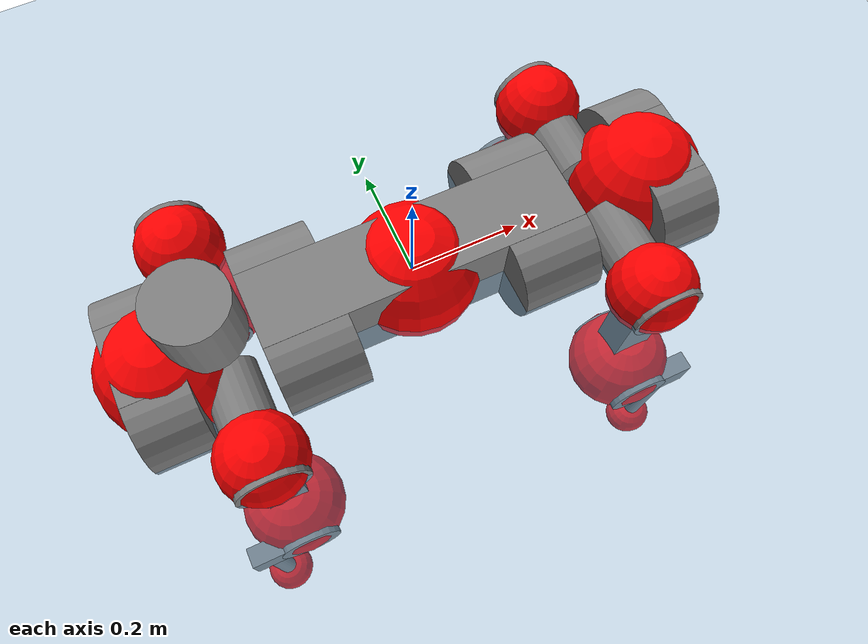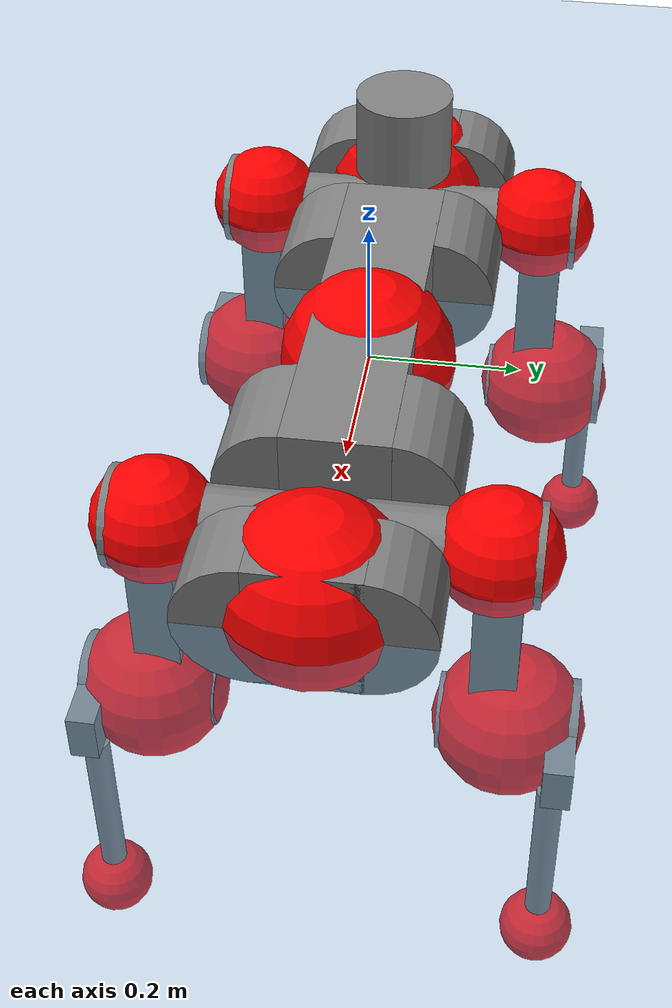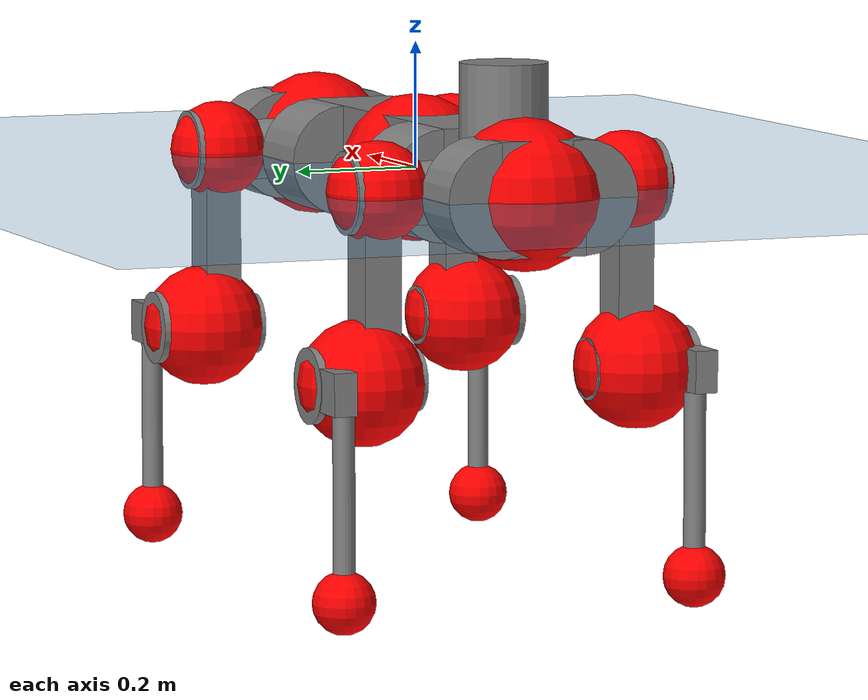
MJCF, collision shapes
<mujoco model="anymal_c">
  <compiler angle="radian" assetdir="assets" balanceinertia="true" inertiafromgeom="false"/>

  <option timestep="0.005" density="1.2" viscosity="2e-05"/>

  <size nkey="1"/>

  <visual>
    <quality shadowsize="8192"/>
    <map shadowclip="0.5"/>
  </visual>

  <default>
    <default class="/">
      <material specular="0" shininess="0.25"/>
      <geom contype="0" conaffinity="0" group="1" solref="-1000 -80"/>
      <site size="0.01 0.005 0.005" group="5"/>
      <general forcelimited="true" forcerange="-80 80" biastype="affine" gainprm="80" biasprm="0 -80 -2"/>
      <default class="anymal_c">
        <joint armature="0.01" damping="0.01" frictionloss="0.1"/>
        <default class="visual">
          <geom type="mesh" group="2"/>
          <default class="visual_zflip"/>
        </default>
        <default class="collision">
          <geom type="cylinder" group="3"/>
          <default class="foot">
            <geom size="0.03 0 0" type="sphere" condim="6" priority="1" friction="0.8 0.02 0.01" solimp="0.015 1 0.03"/>
          </default>
        </default>
      </default>
      <default class="reward_collision_sphere">
        <geom group="5" rgba="1 0 0 1"/>
      </default>
    </default>
  </default>

  <asset>
    <texture type="skybox" colorspace="auto" name="//unnamed_texture_0" builtin="gradient" rgb1="0.95 0.95 0.95" rgb2="0.95 0.95 0.95" width="100" height="600"/>
    <texture type="2d" colorspace="auto" name="texplane" builtin="checker" rgb1="0.345 0.575 0.748" rgb2="0.345 0.575 0.748" markrgb="1 1 1" width="512" height="512"/>
    <texture type="2d" colorspace="linear" name="base" file="base.png"/>
    <texture type="2d" colorspace="linear" name="top_shell" file="top_shell.png"/>
    <texture type="2d" colorspace="linear" name="bottom_shell" file="bottom_shell.png"/>
    <texture type="2d" colorspace="linear" name="remote" file="remote.png"/>
    <texture type="2d" colorspace="linear" name="hatch" file="hatch.png"/>
    <texture type="2d" colorspace="linear" name="handle" file="handle.png"/>
    <texture type="2d" colorspace="linear" name="face" file="face.png"/>
    <texture type="2d" colorspace="linear" name="battery" file="battery.png"/>
    <texture type="2d" colorspace="linear" name="lidar_cage" file="lidar_cage.png"/>
    <texture type="2d" colorspace="linear" name="depth_camera" file="depth_camera.png"/>
    <texture type="2d" colorspace="linear" name="wide_angle_camera" file="wide_angle_camera.png"/>
    <texture type="2d" colorspace="linear" name="lidar" file="lidar.png"/>
    <texture type="2d" colorspace="linear" name="drive" file="drive.png"/>
    <texture type="2d" colorspace="linear" name="hip_l" file="hip_l.png"/>
    <texture type="2d" colorspace="linear" name="shank_l" file="shank_l.png"/>
    <texture type="2d" colorspace="linear" name="foot" file="foot.png"/>
    <texture type="2d" colorspace="linear" name="thigh" file="thigh.png"/>
    <texture type="2d" colorspace="linear" name="shank_r" file="shank_r.png"/>
    <texture type="2d" colorspace="linear" name="hip_r" file="hip_r.png"/>
    <material name="MatPlane" class="/" texture="texplane" texuniform="true" texrepeat="2 2" specular="0.9" shininess="0.5"/>
    <material name="black_plastic" class="/" rgba="0.007 0.007 0.007 1"/>
    <material name="green" class="/" rgba="0.052 0.178 0.033 1"/>
    <material name="red" class="/" rgba="0.178 0.006 0.005 1"/>
    <material name="yellow" class="/" rgba="0.178 0.119 0.006 1"/>
    <material name="lwl" class="/" rgba="0.8 0.8 0.8 1"/>
    <material name="base" class="/" texture="base"/>
    <material name="top_shell" class="/" texture="top_shell"/>
    <material name="bottom_shell" class="/" texture="bottom_shell"/>
    <material name="hip_l" class="/" texture="hip_l"/>
    <material name="thigh" class="/" texture="thigh"/>
    <material name="shank_l" class="/" texture="shank_l"/>
    <material name="foot" class="/" texture="foot"/>
    <material name="hip_r" class="/" texture="hip_r"/>
    <material name="shank" class="/" texture="shank_r"/>
    <material name="hatch" class="/" texture="hatch"/>
    <material name="remote" class="/" texture="remote"/>
    <material name="handle" class="/" texture="handle"/>
    <material name="face" class="/" texture="face"/>
    <material name="depth_camera" class="/" texture="depth_camera"/>
    <material name="wide_angle_camera" class="/" texture="wide_angle_camera"/>
    <material name="battery" class="/" texture="battery"/>
    <material name="lidar_cage" class="/" texture="lidar_cage"/>
    <material name="lidar" class="/" texture="lidar"/>
    <material name="drive" class="/" texture="drive"/>
    <mesh name="base_0" class="/" file="base_0.obj"/>
    <mesh name="base_1" class="/" file="base_1.obj"/>
    <mesh name="base_2" class="/" file="base_2.obj"/>
    <mesh name="base_3" class="/" file="base_3.obj"/>
    <mesh name="base_4" class="/" file="base_4.obj"/>
    <mesh name="base_5" class="/" file="base_5.obj"/>
    <mesh name="top_shell" class="/" file="top_shell.obj"/>
    <mesh name="bottom_shell" class="/" file="bottom_shell.obj"/>
    <mesh name="remote" class="/" file="remote.obj"/>
    <mesh name="handle" class="/" file="handle.obj"/>
    <mesh name="face" class="/" file="face.obj"/>
    <mesh name="wide_angle_camera" class="/" file="wide_angle_camera.obj"/>
    <mesh name="depth_camera" class="/" file="depth_camera.obj"/>
    <mesh name="battery" class="/" file="battery.obj"/>
    <mesh name="lidar_cage" class="/" file="lidar_cage.obj"/>
    <mesh name="lidar" class="/" file="lidar.obj"/>
    <mesh name="drive" class="/" file="drive.obj"/>
    <mesh name="hip_l" class="/" file="hip_l.obj"/>
    <mesh name="thigh" class="/" file="thigh.obj"/>
    <mesh name="shank_l" class="/" file="shank_l.obj"/>
    <mesh name="foot" class="/" file="foot.obj"/>
    <mesh name="hip_r" class="/" file="hip_r.obj"/>
    <mesh name="hatch" class="/" file="hatch.obj"/>
    <mesh name="shank_r" class="/" file="shank_r.obj"/>
  </asset>

  <worldbody>
    <geom name="floor" class="/" size="100 100 0.125" type="plane" group="0" material="MatPlane"/>
    <light name="toplight_shadow" class="/" pos="0 0 5" dir="0.0990148 0.0990148 -0.990148" type="directional" ambient="0.04 0.04 0.04" diffuse="0.55 0.55 0.55" specular="0.12 0.12 0.12"/>
    <light name="toplight_fill" class="/" pos="0 0 5" dir="0.0990148 0.0990148 -0.990148" type="directional" castshadow="false" ambient="0.04 0.04 0.04" diffuse="0.3 0.3 0.3" specular="0.08 0.08 0.08"/>
    <body name="trunk" childclass="anymal_c" pos="-0.000222983 -0.000622675 0.000440881" quat="1 -3.40664e-06 1.44417e-07 1.5392e-05">
      <inertial pos="0.00182587 -0.00112982 0.0503139" quat="0.506777 0.497819 0.503493 0.49178" mass="17.9119" diaginertia="0.576666 0.478526 0.232513"/>
      <joint name="//unnamed_joint_0" type="free" armature="0" damping="0" frictionloss="0"/>
      <geom name="//unnamed_geom_1" class="visual" material="green" mesh="base_0"/>
      <geom name="//unnamed_geom_2" class="visual" material="yellow" mesh="base_1"/>
      <geom name="//unnamed_geom_3" class="visual" material="red" mesh="base_2"/>
      <geom name="//unnamed_geom_4" class="visual" material="black_plastic" mesh="base_3"/>
      <geom name="//unnamed_geom_5" class="visual" material="lwl" mesh="base_4"/>
      <geom name="//unnamed_geom_6" class="visual" material="base" mesh="base_5"/>
      <geom name="trunk_1" class="collision" size="0.284891 0.0687668 0.0884144" type="box"/>
      <geom name="trunk_2" class="collision" size="0.0884144 0.0712227" pos="0.213483 0.0663465 0" quat="0.707107 0 0.707107 0"/>
      <geom name="trunk_3" class="collision" size="0.0884144 0.0712227" pos="-0.213483 0.0663465 0" quat="0.707107 0 0.707107 0"/>
      <geom name="trunk_4" class="collision" size="0.0884144 0.0712227" pos="0.213483 -0.0663465 0" quat="0.707107 0 0.707107 0"/>
      <geom name="trunk_5" class="collision" size="0.0884144 0.0712227" pos="-0.213483 -0.0663465 0" quat="0.707107 0 0.707107 0"/>
      <geom name="//unnamed_geom_12" class="visual" material="top_shell" mesh="top_shell"/>
      <geom name="//unnamed_geom_13" class="visual" material="bottom_shell" mesh="bottom_shell"/>
      <geom name="//unnamed_geom_14" class="visual" material="remote" mesh="remote"/>
      <geom name="//unnamed_geom_15" class="visual" material="handle" mesh="handle"/>
      <geom name="//unnamed_geom_16" class="visual" pos="0.406844 0 0" quat="1 0 0 0" material="face" mesh="face"/>
      <geom name="trunk_6" class="collision" size="0.054031 0.0687668 0.0884144" pos="0.460829 0 0" type="box"/>
      <geom name="//unnamed_geom_18" class="collision" size="0.0884144 0.054031" pos="0.460829 0.0663465 0" quat="0.707107 0 0.707107 0"/>
      <geom name="//unnamed_geom_19" class="collision" size="0.0884144 0.054031" pos="0.460829 -0.0663465 0" quat="0.707107 0 0.707107 0"/>
      <geom name="//unnamed_geom_20" class="visual" pos="0.453125 0 -0.0299958" quat="0.965926 0 0.258819 0" material="depth_camera" mesh="depth_camera"/>
      <geom name="//unnamed_geom_21" class="visual" pos="0.503525 0 0.0152366" material="wide_angle_camera" mesh="wide_angle_camera"/>
      <geom name="//unnamed_geom_22" class="visual_zflip" pos="-0.406844 0 0" quat="0 0 0 1" material="face" mesh="face"/>
      <geom name="trunk_7" class="collision" size="0.054031 0.0687668 0.0884144" pos="-0.460829 0 0" quat="0 0 0 1" type="box"/>
      <geom name="//unnamed_geom_24" class="collision" size="0.0884144 0.054031" pos="-0.460829 -0.0663465 0" quat="0 -0.707107 0 0.707107"/>
      <geom name="//unnamed_geom_25" class="collision" size="0.0884144 0.054031" pos="-0.460829 0.0663465 0" quat="0 -0.707107 0 0.707107"/>
      <geom name="//unnamed_geom_26" class="visual" pos="-0.453125 0 -0.0299958" quat="0 -0.258819 0 0.965926" material="depth_camera" mesh="depth_camera"/>
      <geom name="//unnamed_geom_27" class="visual_zflip" pos="-0.503525 0 0.0152366" quat="0 0 0 1" material="wide_angle_camera" mesh="wide_angle_camera"/>
      <geom name="//unnamed_geom_28" class="visual" material="battery" mesh="battery"/>
      <geom name="//unnamed_geom_29" class="visual" pos="0 0.0720283 0.0292917" quat="0.683013 -0.183013 0.183013 0.683013" material="depth_camera" mesh="depth_camera"/>
      <geom name="//unnamed_geom_30" class="visual" pos="0 -0.0720283 0.0292917" quat="0.683013 0.183013 0.183013 -0.683013" material="depth_camera" mesh="depth_camera"/>
      <geom name="//unnamed_geom_31" class="visual" pos="-0.357277 0 0.0748091" quat="1 0 0 0" material="lidar_cage" mesh="lidar_cage"/>
      <geom name="trunk_8" class="collision" size="0.0687668 0.058943" pos="-0.357277 0 0.135878"/>
      <geom name="//unnamed_geom_33" class="visual" pos="-0.357277 -1.32491e-05 0.144733" quat="0.707107 0 0 -0.707107" material="lidar" mesh="lidar"/>
      <geom name="//unnamed_geom_34" class="visual" pos="0.294361 0.0985968 -1.20757e-09" quat="0.258819 0.965926 0 0" material="drive" mesh="drive"/>
      <geom name="//unnamed_geom_35" class="visual" pos="0.294361 -0.0985968 1.20757e-09" quat="0.258819 -0.965926 0 0" material="drive" mesh="drive"/>
      <geom name="//unnamed_geom_36" class="visual" pos="-0.294361 0.0985968 1.20757e-09" quat="0 0 0.965926 -0.258819" material="drive" mesh="drive"/>
      <geom name="//unnamed_geom_37" class="visual" pos="-0.294361 -0.0985968 -1.20757e-09" quat="0 0 -0.965926 -0.258819" material="drive" mesh="drive"/>
      <geom name="//unnamed_geom_38" class="visual" pos="0.113858 0 0.0743001" quat="1 0 0 0" material="hatch" mesh="hatch"/>
      <geom name="//unnamed_geom_39" class="reward_collision_sphere" size="0.117886"/>
      <geom name="//unnamed_geom_40" class="reward_collision_sphere" size="0.117886" pos="0.441689 0 0"/>
      <geom name="//unnamed_geom_41" class="reward_collision_sphere" size="0.117886" pos="-0.441689 0 0"/>
      <site name="imu" pos="0.2465 0.00481222 0.04403" size="0.00982383"/>
      <camera name="track" pos="0 -1.89561 0" quat="0.707107 0.707107 0 0" mode="trackcom"/>
      <camera name="ego_camera" pos="0.441689 0 -0.0407124" quat="-0.5 -0.5 0.5 0.5"/>
      <body name="LF_HIP" pos="0.294706 0.101284 0.00150593" quat="0.258886 0.965908 0.000342412 9.87768e-05">
        <inertial pos="0.0551999 -0.0143498 -0.00924684" quat="-0.126623 0.709454 -0.133296 0.680349" mass="2.62795" diaginertia="0.00532974 0.00374623 0.00362171"/>
        <joint name="LF_HAA" pos="0 0 0" axis="0.999998 0.00173441 0.00113792" range="-0.674166 0.472208" armature="0.00982189" damping="0.00419575" frictionloss="0.0978407"/>
        <geom name="//unnamed_geom_42" class="visual" pos="0 -7.10356e-05 1.16675e-05" quat="0.258819 -0.965926 0 0" material="hip_l" mesh="hip_l"/>
        <geom name="//unnamed_geom_43" class="visual" pos="0.0587937 -0.0708219 -0.0414068" quat="0.183013 -0.683013 0.683013 0.183013" material="drive" mesh="drive"/>
        <geom name="//unnamed_geom_44" class="collision" size="0.0491191 0.0687668" pos="0.0587937 -0.0113356 -0.00702798" quat="-0.353553 -0.612372 0.612372 -0.353553"/>
        <body name="LF_THIGH" pos="0.0591617 -0.0671641 -0.0424735" quat="0.183014 -0.683075 0.682971 0.182934">
          <inertial pos="0.0306935 -0.000373764 -0.249605" quat="0.993632 -0.00975448 -0.0773645 0.0813289" mass="2.9112" diaginertia="0.0276834 0.0228199 0.00460555"/>
          <joint name="LF_HFE" pos="0 0 0" axis="0.999989 -0.00155229 -0.00450861" range="-3.16237 3.17249" armature="0.0102758" damping="0.00691605" frictionloss="0.0934364"/>
          <geom name="//unnamed_geom_45" class="visual" pos="0.000670967 1.05729e-06 0" quat="0.707107 0 0 -0.707107" material="thigh" mesh="thigh"/>
          <geom name="//unnamed_geom_46" class="collision" size="0.0638549 0.0392953" pos="0.0392612 0 0" quat="0.5 0.5 -0.5 -0.5"/>
          <geom name="//unnamed_geom_47" class="collision" size="0.0368393 0.0294715 0.138824" pos="0.0294459 0 -0.143831" quat="0.707107 0 0 -0.707107" type="box"/>
          <geom name="//unnamed_geom_48" class="visual" pos="0.0984475 0 -0.290076" quat="1 0 0 0" material="drive" mesh="drive"/>
          <geom name="//unnamed_geom_49" class="collision" size="0.0491191 0.0687668" pos="0.0297404 0 -0.290076" quat="0.707107 0 0.707107 0"/>
          <geom name="//unnamed_geom_50" class="reward_collision_sphere" size="0.0785906" pos="0.0245383 0 0"/>
          <body name="LF_SHANK" pos="0.0996898 -0.00206672 -0.289633" quat="1 -0.00024258 0.000145054 7.72124e-05">
            <inertial pos="0.00515965 -0.0580497 -0.0841965" quat="0.992852 -0.116716 -0.000602319 -0.0249379" mass="0.555604" diaginertia="0.00922432 0.00725101 0.0011958"/>
            <joint name="LF_KFE" pos="0 0 0" axis="0.999994 -0.00217919 0.00253382" range="-3.18105 3.14015" armature="0.0100417" damping="0.00986509" frictionloss="0.0989341"/>
            <geom name="//unnamed_geom_51" class="visual" pos="0.000218788 0.00116659 0" quat="0.707107 0 0 -0.707107" material="shank_l" mesh="shank_l"/>
            <geom name="LF_kfe_act" class="collision" size="0.058943 0.0196477" pos="0.0196306 0 0" quat="0.5 0.5 -0.5 -0.5"/>
            <geom name="//unnamed_geom_53" class="collision" size="0.056486 0.0331554 0.0186653" pos="0.0196306 -0.0544979 0" quat="0.5 0.5 -0.5 -0.5" type="box"/>
            <geom name="//unnamed_geom_54" class="visual" pos="0.0128089 -0.0829837 -0.343989" quat="0.382683 0 0 -0.92388" material="foot" mesh="foot"/>
            <geom name="LF_calf" class="collision" size="0.0171917 0.138763" pos="0.012809 -0.0833596 -0.171995" quat="0.707107 0 0 -0.707107"/>
            <geom name="LF_foot" class="foot" size="0.0300886" pos="0.012809 -0.0833596 -0.321089" quat="0.707107 0 0 -0.707107"/>
            <geom name="//unnamed_geom_57" class="reward_collision_sphere" size="0.0982383" pos="-0.0490765 0 0"/>
            <geom name="//unnamed_geom_58" class="reward_collision_sphere" size="0.0491191" pos="0.012809 -0.0833596 -0.321089"/>
            <site name="LF_foot" class="foot" pos="0.012809 -0.0833596 -0.321089" quat="0.707107 0 0 -0.707107" size="0.00982383"/>
          </body>
        </body>
      </body>
      <body name="RF_HIP" pos="0.294815 -0.098838 0.001301" quat="0.258855 -0.965916 -8.27659e-06 0.000135188">
        <inertial pos="0.0566835 0.0145327 -0.00875614" quat="0.13523 0.679267 0.127625 0.709944" mass="2.60383" diaginertia="0.00541201 0.00367331 0.00364599"/>
        <joint name="RF_HAA" pos="0 0 0" axis="0.999999 0.000720762 0.00123774" range="-0.494568 0.727126" armature="0.00944607" damping="0.00579469" frictionloss="0.0937076"/>
        <geom name="//unnamed_geom_59" class="visual" pos="0 7.1035e-05 1.16675e-05" quat="0.258819 0.965926 0 0" material="hip_r" mesh="hip_r"/>
        <geom name="//unnamed_geom_60" class="visual" pos="0.0587937 0.0708219 -0.0414068" quat="0.183013 0.683013 0.683013 -0.183013" material="drive" mesh="drive"/>
        <geom name="//unnamed_geom_61" class="collision" size="0.0491191 0.0687668" pos="0.0587937 0.0113356 -0.00702798" quat="-0.353553 0.612372 0.612372 0.353553"/>
        <body name="RF_THIGH" pos="0.0608526 0.0711186 -0.0435094" quat="0.182848 0.683308 0.6828 -0.182869">
          <inertial pos="0.0312346 -0.00220559 -0.249865" quat="0.992818 -0.00387926 -0.0818438 0.0871733" mass="2.95399" diaginertia="0.0280247 0.0231293 0.00468534"/>
          <joint name="RF_HFE" pos="0 0 0" axis="0.999997 -0.00098702 0.00223354" range="-3.17904 3.1412" armature="0.0100823" damping="0.00771157" frictionloss="0.0979323"/>
          <geom name="//unnamed_geom_62" class="visual" pos="0.000670967 1.05729e-06 0" quat="0.707107 0 0 -0.707107" material="thigh" mesh="thigh"/>
          <geom name="//unnamed_geom_63" class="collision" size="0.0638549 0.0392953" pos="0.0392612 0 0" quat="0.5 0.5 0.5 0.5"/>
          <geom name="//unnamed_geom_64" class="collision" size="0.0368393 0.0294715 0.138824" pos="0.0294459 0 -0.143831" quat="0.707107 0 0 0.707107" type="box"/>
          <geom name="//unnamed_geom_65" class="visual" pos="0.0984475 0 -0.290076" quat="1 0 0 0" material="drive" mesh="drive"/>
          <geom name="//unnamed_geom_66" class="collision" size="0.0491191 0.0687668" pos="0.0297404 0 -0.290076" quat="0.707107 0 0.707107 0"/>
          <geom name="//unnamed_geom_67" class="reward_collision_sphere" size="0.0785906" pos="0.0245383 0 0"/>
          <body name="RF_SHANK" pos="0.0965858 0.000956535 -0.290026" quat="1 0.000617093 1.83964e-05 0.000142991">
            <inertial pos="0.0045166 0.0582388 -0.0818162" quat="0.993018 0.115405 -0.00251631 0.0242875" mass="0.560342" diaginertia="0.0092352 0.00706128 0.00120938"/>
            <joint name="RF_KFE" pos="0 0 0" axis="0.99993 -0.00784642 0.00881755" range="-3.13673 3.1402" armature="0.0106616" damping="0.0174235" frictionloss="0.0924053"/>
            <geom name="//unnamed_geom_68" class="visual" pos="0.000218786 -0.00116658 0" quat="0.707107 0 0 0.707107" material="shank" mesh="shank_r"/>
            <geom name="RF_kfe_act" class="collision" size="0.058943 0.0196477" pos="0.0196306 0 0" quat="0.5 0.5 0.5 0.5"/>
            <geom name="//unnamed_geom_70" class="collision" size="0.056486 0.0331554 0.0186653" pos="0.0196306 0.0544979 0" quat="0.5 0.5 0.5 0.5" type="box"/>
            <geom name="//unnamed_geom_71" class="visual" pos="0.012809 0.0829837 -0.343989" quat="0.382683 0 0 0.92388" material="foot" mesh="foot"/>
            <geom name="RF_calf" class="collision" size="0.0171917 0.138763" pos="0.012809 0.0833596 -0.171995" quat="0.707107 0 0 0.707107"/>
            <geom name="RF_foot" class="foot" size="0.0300601" pos="0.012809 0.0833596 -0.321089" quat="0.707107 0 0 0.707107"/>
            <geom name="//unnamed_geom_74" class="reward_collision_sphere" size="0.0982383" pos="-0.0490765 0 0"/>
            <geom name="//unnamed_geom_75" class="reward_collision_sphere" size="0.0491191" pos="0.012809 0.0833596 -0.321089"/>
            <site name="RF_foot" class="foot" pos="0.012809 0.0833596 -0.321089" quat="0.707107 0 0 0.707107" size="0.00982383"/>
          </body>
        </body>
      </body>
      <body name="LH_HIP" pos="-0.293675 0.0991391 -0.00115625" quat="-0.000121287 0.000200021 0.965802 -0.259281">
        <inertial pos="0.0557741 0.0132701 -0.0092298" quat="0.134293 0.681348 0.128607 0.707948" mass="2.58109" diaginertia="0.00527171 0.00371874 0.00354035"/>
        <joint name="LH_HAA" pos="0 0 0" axis="0.999998 3.74819e-05 0.00212391" stiffness="0.00162926" range="-0.493951 0.742352" armature="0.00973647" damping="0.0107797" frictionloss="0.0988189"/>
        <geom name="//unnamed_geom_76" class="visual" pos="0 7.1035e-05 1.16675e-05" quat="-0.258819 -0.965926 0 0" material="hip_r" mesh="hip_r"/>
        <geom name="//unnamed_geom_77" class="visual" pos="0.0587937 0.0708219 -0.0414068" quat="0.183013 0.683013 0.683013 -0.183013" material="drive" mesh="drive"/>
        <geom name="//unnamed_geom_78" class="collision" size="0.0491191 0.0687668" pos="0.0587937 0.0113356 -0.00702798" quat="-0.353553 0.612372 0.612372 0.353553"/>
        <body name="LH_THIGH" pos="0.0581408 0.0678252 -0.0446042" quat="0.18301 0.683012 0.683013 -0.183017">
          <inertial pos="0.0304731 -0.000629265 -0.251753" quat="0.992927 -0.00320551 -0.0811374 0.0866139" mass="2.95486" diaginertia="0.0273804 0.0222976 0.00448917"/>
          <joint name="LH_HFE" pos="0 0 0" axis="0.999972 -0.00144788 0.00731414" range="-3.15682 3.13187" armature="0.010262" damping="0.0018794" frictionloss="0.0959122"/>
          <geom name="//unnamed_geom_79" class="visual" pos="0.000670967 1.05729e-06 0" quat="0.707107 0 0 -0.707107" material="thigh" mesh="thigh"/>
          <geom name="//unnamed_geom_80" class="collision" size="0.0638549 0.0392953" pos="0.0392612 0 0" quat="0.5 0.5 -0.5 -0.5"/>
          <geom name="//unnamed_geom_81" class="collision" size="0.0368393 0.0294715 0.138824" pos="0.0294459 0 -0.143831" quat="0.707107 0 0 -0.707107" type="box"/>
          <geom name="//unnamed_geom_82" class="visual" pos="0.0984475 0 -0.290076" quat="1 0 0 0" material="drive" mesh="drive"/>
          <geom name="//unnamed_geom_83" class="collision" size="0.0491191 0.0687668" pos="0.0297404 0 -0.290076" quat="0.707107 0 0.707107 0"/>
          <geom name="//unnamed_geom_84" class="reward_collision_sphere" size="0.0785906" pos="0.0245383 0 0"/>
          <body name="LH_SHANK" pos="0.0987572 -0.00267979 -0.291517" quat="1 2.2765e-05 -3.2231e-05 1.364e-05">
            <inertial pos="0.00491668 0.05808 -0.0824659" quat="0.992939 0.115854 -0.00104526 0.0254622" mass="0.551831" diaginertia="0.00935514 0.00702125 0.00121316"/>
            <joint name="LH_KFE" pos="0 0 0" axis="0.999981 -0.00522658 0.00335313" range="-3.10387 3.12939" armature="0.00966877" damping="0.0133718" frictionloss="0.0995749"/>
            <geom name="//unnamed_geom_85" class="visual" pos="0.000218786 -0.00116658 0" quat="-0.707107 0 0 -0.707107" material="shank" mesh="shank_r"/>
            <geom name="LH_kfe_act" class="collision" size="0.058943 0.0196477" pos="0.0196306 0 0" quat="0.5 0.5 -0.5 -0.5"/>
            <geom name="//unnamed_geom_87" class="collision" size="0.056486 0.0331554 0.0186653" pos="0.0196306 0.0544979 0" quat="0.5 0.5 -0.5 -0.5" type="box"/>
            <geom name="//unnamed_geom_88" class="visual" pos="0.012809 0.0829837 -0.343989" quat="-0.382683 0 0 -0.92388" material="foot" mesh="foot"/>
            <geom name="LH_calf" class="collision" size="0.0171917 0.138763" pos="0.012809 0.0833596 -0.171995" quat="0.707107 0 0 -0.707107"/>
            <geom name="LH_foot" class="foot" size="0.0298386" pos="0.012809 0.0833596 -0.321089" quat="0.707107 0 0 -0.707107"/>
            <geom name="//unnamed_geom_91" class="reward_collision_sphere" size="0.0982383" pos="-0.0490765 0 0"/>
            <geom name="//unnamed_geom_92" class="reward_collision_sphere" size="0.0491191" pos="0.012809 0.0833596 -0.321089"/>
            <site name="LH_foot" class="foot" pos="0.012809 0.0833596 -0.321089" quat="0.707107 0 0 -0.707107" size="0.00982383"/>
          </body>
        </body>
      </body>
      <body name="RH_HIP" pos="-0.294732 -0.0987264 0.00134303" quat="6.35128e-05 -0.000109643 -0.965829 -0.259181">
        <inertial pos="0.055135 -0.0134577 -0.0085585" quat="-0.128907 0.708737 -0.135686 0.680194" mass="2.61235" diaginertia="0.00532757 0.00368803 0.003643"/>
        <joint name="RH_HAA" pos="0 0 0" axis="0.999986 0.00498325 -0.0019894" range="-0.733518 0.459812" armature="0.00978497" damping="0.0101315" frictionloss="0.100838"/>
        <geom name="//unnamed_geom_93" class="visual" pos="0 -7.10356e-05 1.16675e-05" quat="-0.258819 0.965926 0 0" material="hip_l" mesh="hip_l"/>
        <geom name="//unnamed_geom_94" class="visual" pos="0.0587937 -0.0708219 -0.0414068" quat="-0.183013 0.683013 -0.683013 -0.183013" material="drive" mesh="drive"/>
        <geom name="//unnamed_geom_95" class="collision" size="0.0491191 0.0687668" pos="0.0587937 -0.0113356 -0.00702798" quat="0.353553 0.612372 -0.612372 0.353553"/>
        <body name="RH_THIGH" pos="0.0585779 -0.0681583 -0.0434026" quat="-0.183384 0.683185 -0.682559 -0.183692">
          <inertial pos="0.0305554 -0.00169241 -0.250271" quat="0.993116 -0.00497697 -0.0811955 0.0842756" mass="2.92432" diaginertia="0.0278605 0.022923 0.00459418"/>
          <joint name="RH_HFE" pos="0 0 0" axis="0.99997 -0.00651124 0.00424577" range="-3.13758 3.13334" armature="0.00980281" damping="0.0066589" frictionloss="0.0994293"/>
          <geom name="//unnamed_geom_96" class="visual" pos="0.000670967 1.05729e-06 0" quat="0.707107 0 0 -0.707107" material="thigh" mesh="thigh"/>
          <geom name="//unnamed_geom_97" class="collision" size="0.0638549 0.0392953" pos="0.0392612 0 0" quat="0.5 0.5 0.5 0.5"/>
          <geom name="//unnamed_geom_98" class="collision" size="0.0368393 0.0294715 0.138824" pos="0.0294459 0 -0.143831" quat="0.707107 0 0 0.707107" type="box"/>
          <geom name="//unnamed_geom_99" class="visual" pos="0.0984475 0 -0.290076" quat="1 0 0 0" material="drive" mesh="drive"/>
          <geom name="//unnamed_geom_100" class="collision" size="0.0491191 0.0687668" pos="0.0297404 0 -0.290076" quat="0.707107 0 0.707107 0"/>
          <geom name="//unnamed_geom_101" class="reward_collision_sphere" size="0.0785906" pos="0.0245383 0 0"/>
          <body name="RH_SHANK" pos="0.0955355 0.000507175 -0.289092" quat="1 -0.000584877 -0.000121959 3.77918e-05">
            <inertial pos="0.00770854 -0.0579082 -0.0814782" quat="0.992559 -0.119707 -0.000621545 -0.0222737" mass="0.555731" diaginertia="0.00943107 0.00711452 0.00122092"/>
            <joint name="RH_KFE" pos="0 0 0" axis="0.999996 0.000939058 -0.00264639" range="-3.14084 3.16995" armature="0.00906838" damping="0.00811372" frictionloss="0.0978384"/>
            <geom name="//unnamed_geom_102" class="visual" pos="0.000218788 0.00116659 0" quat="0.707107 0 0 -0.707107" material="shank_l" mesh="shank_l"/>
            <geom name="RH_kfe_act" class="collision" size="0.058943 0.0196477" pos="0.0196306 0 0" quat="0.5 0.5 0.5 0.5"/>
            <geom name="//unnamed_geom_104" class="collision" size="0.056486 0.0331554 0.0186653" pos="0.0196306 -0.0544979 0" quat="0.5 0.5 0.5 0.5" type="box"/>
            <geom name="//unnamed_geom_105" class="visual" pos="0.0128089 -0.0829837 -0.343989" quat="0.382683 0 0 -0.92388" material="foot" mesh="foot"/>
            <geom name="RH_calf" class="collision" size="0.0171917 0.138763" pos="0.012809 -0.0833596 -0.171995" quat="0.707107 0 0 0.707107"/>
            <geom name="RH_foot" class="foot" size="0.029471" pos="0.012809 -0.0833596 -0.321089" quat="0.707107 0 0 0.707107"/>
            <geom name="//unnamed_geom_108" class="reward_collision_sphere" size="0.0982383" pos="-0.0490765 0 0"/>
            <geom name="//unnamed_geom_109" class="reward_collision_sphere" size="0.0491191" pos="0.012809 -0.0833596 -0.321089"/>
            <site name="RH_foot" class="foot" pos="0.012809 -0.0833596 -0.321089" quat="0.707107 0 0 0.707107" size="0.00982383"/>
          </body>
        </body>
      </body>
    </body>
  </worldbody>

  <contact>
    <pair class="/" geom1="floor" geom2="LF_foot" name="//unnamed_contact_0"/>
    <pair class="/" geom1="floor" geom2="RF_foot" name="//unnamed_contact_1"/>
    <pair class="/" geom1="floor" geom2="LH_foot" name="//unnamed_contact_2"/>
    <pair class="/" geom1="floor" geom2="RH_foot" name="//unnamed_contact_3"/>
  </contact>

  <actuator>
    <general name="LF_HAA" class="/" joint="LF_HAA" forcerange="-85.9515 85.9515" gainprm="81.5277" biasprm="0 -81.5277 -1.92218"/>
    <general name="LF_HFE" class="/" joint="LF_HFE" forcerange="-79.8264 79.8264" gainprm="81.5277" biasprm="0 -81.5277 -1.92218"/>
    <general name="LF_KFE" class="/" joint="LF_KFE" forcerange="-79.1296 79.1296" gainprm="81.5277" biasprm="0 -81.5277 -1.92218"/>
    <general name="RF_HAA" class="/" joint="RF_HAA" forcerange="-84.6363 84.6363" gainprm="81.5277" biasprm="0 -81.5277 -1.92218"/>
    <general name="RF_HFE" class="/" joint="RF_HFE" forcerange="-85.7031 85.7031" gainprm="81.5277" biasprm="0 -81.5277 -1.92218"/>
    <general name="RF_KFE" class="/" joint="RF_KFE" forcerange="-78.994 78.994" gainprm="81.5277" biasprm="0 -81.5277 -1.92218"/>
    <general name="LH_HAA" class="/" joint="LH_HAA" forcerange="-78.1222 78.1222" gainprm="81.5277" biasprm="0 -81.5277 -1.92218"/>
    <general name="LH_HFE" class="/" joint="LH_HFE" forcerange="-78.8006 78.8006" gainprm="81.5277" biasprm="0 -81.5277 -1.92218"/>
    <general name="LH_KFE" class="/" joint="LH_KFE" forcerange="-81.9059 81.9059" gainprm="81.5277" biasprm="0 -81.5277 -1.92218"/>
    <general name="RH_HAA" class="/" joint="RH_HAA" forcerange="-73.3239 73.3239" gainprm="81.5277" biasprm="0 -81.5277 -1.92218"/>
    <general name="RH_HFE" class="/" joint="RH_HFE" forcerange="-77.5854 77.5854" gainprm="81.5277" biasprm="0 -81.5277 -1.92218"/>
    <general name="RH_KFE" class="/" joint="RH_KFE" forcerange="-78.8465 78.8465" gainprm="81.5277" biasprm="0 -81.5277 -1.92218"/>
  </actuator>

  <sensor>
    <gyro site="imu" name="imu_angular_velocity"/>
    <velocimeter site="imu" name="imu_linear_velocity"/>
    <framelinvel objtype="site" objname="LF_foot" name="LF_foot_global_linear_velocity"/>
    <framelinvel objtype="site" objname="RF_foot" name="RF_foot_global_linear_velocity"/>
    <framelinvel objtype="site" objname="LH_foot" name="LH_foot_global_linear_velocity"/>
    <framelinvel objtype="site" objname="RH_foot" name="RH_foot_global_linear_velocity"/>
  </sensor>

  <keyframe>
    <key name="home" qpos="0 0 0.55 1 0 0 0 0 0.4 -0.8 0 -0.4 0.8 0 -0.4 0.8 0 0.4 -0.8"/>
  </keyframe>
</mujoco>
